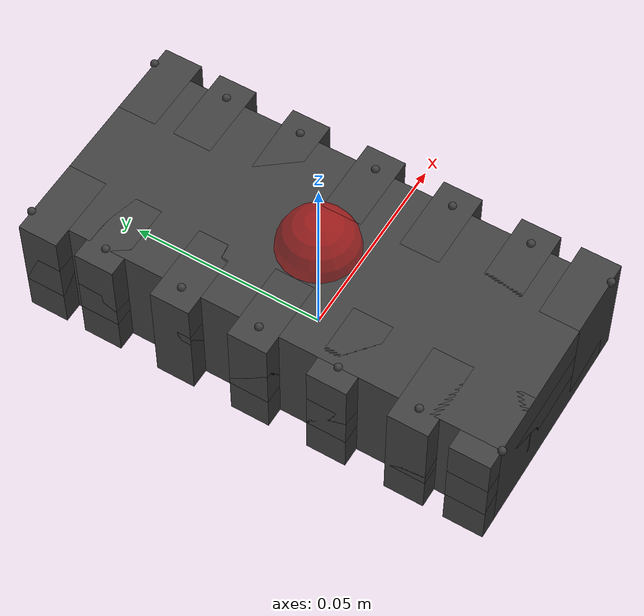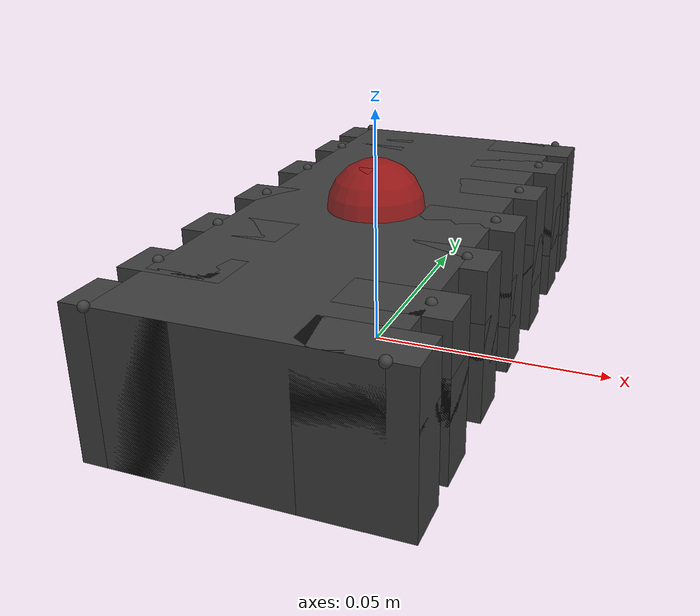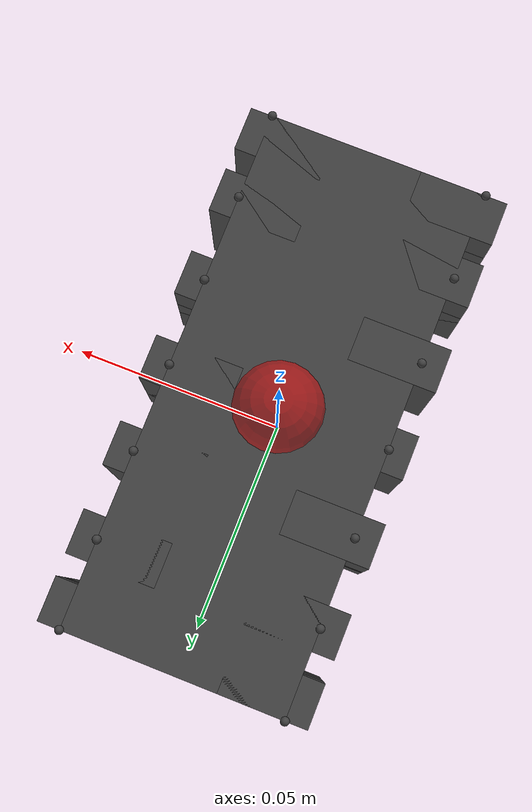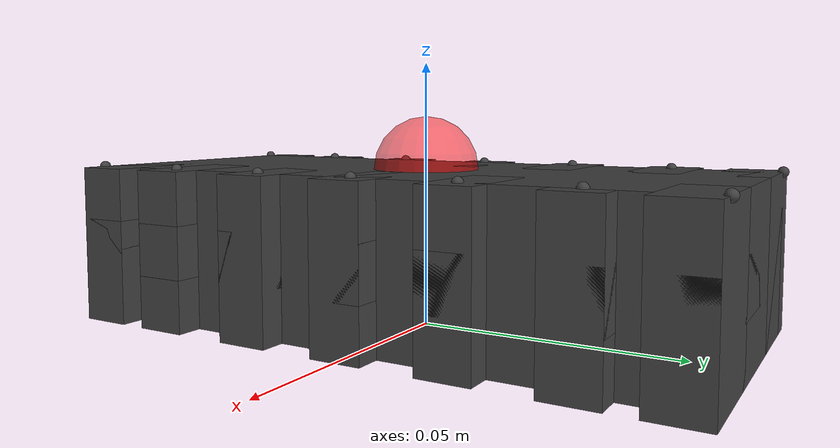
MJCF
<mujoco model="wiping_hand">
    <worldbody>
        <body name="wiping_gripper" pos="0 0 0.015" quat="0.707107 0 0 -0.707107" >
            <site name="ft_frame" pos="0 0 0" size="0.01 0.01 0.01" rgba="1 0 0 1" type="sphere" group="1"/>
            <inertial pos="0 0 0" mass="3e-2" diaginertia="1e-2 1e-2 1e-2"/>

            <geom type="box" pos="0 0 0.0" size="0.06 0.025 0.015" name="wiping_surface_vis" contype="0" conaffinity="0" group="1" rgba="0.25 0.25 0.25 1" />

            <geom type="box" group="0" pos="0.055 0.02 0.0" size="0.005 0.01 0.015" name="wiping_surface1a" solimp="0.2 0.9 0.01" solmix="10000" solref="0.05 1" rgba="0.25 0.25 0.25 1" friction="0.001 0.005 0.0001"/>
            <geom type="box" group="0" pos="0.04 0.02 0.0" size="0.005 0.01 0.015" name="wiping_surface1b" solimp="0.2 0.9 0.01" solmix="10000" solref="0.05 1" rgba="0.25 0.25 0.25 1" friction="0.001 0.005 0.0001"/>
            <geom type="box" group="0" pos="0.02 0.02 0.0" size="0.005 0.01 0.015" name="wiping_surface1c" solimp="0.2 0.9 0.01" solmix="10000" solref="0.05 1" rgba="0.25 0.25 0.25 1" friction="0.001 0.005 0.0001"/>
            <geom type="box" group="0" pos="0.0 0.02 0.0" size="0.005 0.01 0.015" name="wiping_surface1d" solimp="0.2 0.9 0.01" solmix="10000" solref="0.05 1" rgba="0.25 0.25 0.25 1" friction="0.001 0.005 0.0001"/>
            <geom type="box" group="0" pos="-0.02 0.02 0.0" size="0.005 0.01 0.015" name="wiping_surface1e" solimp="0.2 0.9 0.01" solmix="10000" solref="0.05 1" rgba="0.25 0.25 0.25 1" friction="0.001 0.005 0.0001"/>
            <geom type="box" group="0" pos="-0.04 0.02 0.0" size="0.005 0.01 0.015" name="wiping_surface1f" solimp="0.2 0.9 0.01" solmix="10000" solref="0.05 1" rgba="0.25 0.25 0.25 1" friction="0.001 0.005 0.0001"/>
            <geom type="box" group="0" pos="-0.055 0.02 0.0" size="0.005 0.01 0.015" name="wiping_surface1g" solimp="0.2 0.9 0.01" solmix="10000" solref="0.05 1" rgba="0.25 0.25 0.25 1" friction="0.001 0.005 0.0001"/>

            <geom type="sphere" group="0" pos="0.06 0.025 0.015" size="0.001" name="wiping_corner1" solimp="0.0 0.1 0.01" solmix="10000" solref="1 2" rgba="0.25 0.25 0.25 1" friction="0.001 0.005 0.0001"/>

            <site type="sphere" pos="0.06 0.025 0.015" size="0.001" name="wiping_corner1_site"/>
            <geom type="sphere" group="0" pos="0.04 0.025 0.015" size="0.001" name="wiping_surface1br" solimp="0.0 0.1 0.01" solmix="10000" solref="1 2" rgba="0.25 0.25 0.25 1" friction="0.001 0.005 0.0001"/>
            <geom type="sphere" group="0" pos="0.02 0.025 0.015" size="0.001" name="wiping_surface1cr" solimp="0.0 0.1 0.01" solmix="10000" solref="1 2" rgba="0.25 0.25 0.25 1" friction="0.001 0.005 0.0001"/>
            <geom type="sphere" group="0" pos="0.0 0.025 0.015" size="0.001" name="wiping_surface1dr" solimp="0.0 0.1 0.01" solmix="10000" solref="1 2" rgba="0.25 0.25 0.25 1" friction="0.001 0.005 0.0001"/>
            <geom type="sphere" group="0" pos="-0.02 0.025 0.015" size="0.001" name="wiping_surface1er" solimp="0.0 0.1 0.01" solmix="10000" solref="1 2" rgba="0.25 0.25 0.25 1" friction="0.001 0.005 0.0001"/>
            <geom type="sphere" group="0" pos="-0.04 0.025 0.015" size="0.001" name="wiping_surface1fr" solimp="0.0 0.1 0.01" solmix="10000" solref="1 2" rgba="0.25 0.25 0.25 1" friction="0.001 0.005 0.0001"/>
            <geom type="sphere" group="0" pos="-0.06 0.025 0.015" size="0.001" name="wiping_corner2" solimp="0.0 0.1 0.01" solmix="10000" solref="1 2" rgba="0.25 0.25 0.25 1" friction="0.001 0.005 0.0001"/>
            <site type="sphere" pos="-0.06 0.025 0.015" size="0.001" name="wiping_corner2_site"/>

            <geom type="box" group="0" pos="0.055 -0.02 0.0" size="0.005 0.01 0.015" name="wiping_surface2a" solimp="0.2 0.9 0.01" solmix="10000" solref="0.05 1" rgba="0.25 0.25 0.25 1" friction="0.001 0.005 0.0001"/>
            <geom type="box" group="0" pos="0.04 -0.02 0.0" size="0.005 0.01 0.015" name="wiping_surface2b" solimp="0.2 0.9 0.01" solmix="10000" solref="0.05 1" rgba="0.25 0.25 0.25 1" friction="0.001 0.005 0.0001"/>
            <geom type="box" group="0" pos="0.02 -0.02 0.0" size="0.005 0.01 0.015" name="wiping_surface2c" solimp="0.2 0.9 0.01" solmix="10000" solref="0.05 1" rgba="0.25 0.25 0.25 1" friction="0.001 0.005 0.0001"/>
            <geom type="box" group="0" pos="0.0 -0.02 0.0" size="0.005 0.01 0.015" name="wiping_surface2d" solimp="0.2 0.9 0.01" solmix="10000" solref="0.05 1" rgba="0.25 0.25 0.25 1" friction="0.001 0.005 0.0001"/>
            <geom type="box" group="0" pos="-0.02 -0.02 0.0" size="0.005 0.01 0.015" name="wiping_surface2e" solimp="0.2 0.9 0.01" solmix="10000" solref="0.05 1" rgba="0.25 0.25 0.25 1" friction="0.001 0.005 0.0001"/>
            <geom type="box" group="0" pos="-0.04 -0.02 0.0" size="0.005 0.01 0.015" name="wiping_surface2f" solimp="0.2 0.9 0.01" solmix="10000" solref="0.05 1" rgba="0.25 0.25 0.25 1" friction="0.001 0.005 0.0001"/>
            <geom type="box" group="0" pos="-0.055 -0.02 0.0" size="0.005 0.01 0.015" name="wiping_surface2g" solimp="0.2 0.9 0.01" solmix="10000" solref="0.05 1" rgba="0.25 0.25 0.25 1" friction="0.001 0.005 0.0001"/>

            <geom type="sphere" group="0" pos="0.06 -0.025 0.015" size="0.001" name="wiping_corner3" solimp="0.0 0.1 0.01" solmix="10000" solref="1 2" rgba="0.25 0.25 0.25 1" friction="0.001 0.005 0.0001"/>
            <site type="sphere" pos="0.06 -0.025 0.015" size="0.001" name="wiping_corner3_site"/>
            <geom type="sphere" group="0" pos="0.04 -0.025 0.015" size="0.001" name="wiping_surface2br" solimp="0.0 0.1 0.01" solmix="10000" solref="1 2" rgba="0.25 0.25 0.25 1" friction="0.001 0.005 0.0001"/>
            <geom type="sphere" group="0" pos="0.02 -0.025 0.015" size="0.001" name="wiping_surface2cr" solimp="0.0 0.1 0.01" solmix="10000" solref="1 2" rgba="0.25 0.25 0.25 1" friction="0.001 0.005 0.0001"/>
            <geom type="sphere" group="0" pos="0.0 -0.025 0.015" size="0.001" name="wiping_surface2dr" solimp="0.0 0.1 0.01" solmix="10000" solref="1 2" rgba="0.25 0.25 0.25 1" friction="0.001 0.005 0.0001"/>
            <geom type="sphere" group="0" pos="-0.02 -0.025 0.015" size="0.001" name="wiping_surface2er" solimp="0.0 0.1 0.01" solmix="10000" solref="1 2" rgba="0.25 0.25 0.25 1" friction="0.001 0.005 0.0001"/>
            <geom type="sphere" group="0" pos="-0.04 -0.025 0.015" size="0.001" name="wiping_surface2fr" solimp="0.0 0.1 0.01" solmix="10000" solref="1 2" rgba="0.25 0.25 0.25 1" friction="0.001 0.005 0.0001"/>
            <geom type="sphere" group="0" pos="-0.06 -0.025 0.015" size="0.001" name="wiping_corner4" solimp="0.0 0.1 0.01" solmix="10000" solref="1 2" rgba="0.25 0.25 0.25 1" friction="0.001 0.005 0.0001"/>
            <site type="sphere" pos="-0.06 -0.025 0.015" size="0.001" name="wiping_corner4_site"/>

            <geom type="box" group="0" pos="0.055 0.0 0.0" size="0.005 0.03 0.005" name="wiping_surface1ax" solimp="0.001 0.3 0.01" solmix="10000" solref="0.05 1" rgba="0.25 0.25 0.25 1" friction="0.001 0.005 0.0001"/>
            <geom type="box" group="0" pos="0.04 0.0 0.0" size="0.005 0.03 0.005" name="wiping_surface1bx" solimp="0.001 0.3 0.01" solmix="10000" solref="0.05 1" rgba="0.25 0.25 0.25 1" friction="0.001 0.005 0.0001"/>
            <geom type="box" group="0" pos="0.02 0.0 0.0" size="0.005 0.03 0.005" name="wiping_surface1cx" solimp="0.001 0.3 0.01" solmix="10000" solref="0.05 1" rgba="0.25 0.25 0.25 1" friction="0.001 0.005 0.0001"/>
            <geom type="box" group="0" pos="0.0 0.0 0.0" size="0.005 0.03 0.005" name="wiping_surface1dx" solimp="0.001 0.3 0.01" solmix="10000" solref="0.05 1" rgba="0.25 0.25 0.25 1" friction="0.001 0.005 0.0001"/>
            <geom type="box" group="0" pos="-0.02 0.0 0.0" size="0.005 0.03 0.005" name="wiping_surface1ex" solimp="0.001 0.3 0.01" solmix="10000" solref="0.05 1" rgba="0.25 0.25 0.25 1" friction="0.001 0.005 0.0001"/>
            <geom type="box" group="0" pos="-0.04 0.0 0.0" size="0.005 0.03 0.005" name="wiping_surface1fx" solimp="0.001 0.3 0.01" solmix="10000" solref="0.05 1" rgba="0.25 0.25 0.25 1" friction="0.001 0.005 0.0001"/>
            <geom type="box" group="0" pos="-0.055 0.0 0.0" size="0.005 0.03 0.005" name="wiping_surface1gx" solimp="0.001 0.3 0.01" solmix="10000" solref="0.05 1" rgba="0.25 0.25 0.25 1" friction="0.001 0.005 0.0001"/>

            <!-- This site was added for visualization. -->
            <body name="eef" pos="0 0 0.015" quat="1 0 0 0">
                <site name="grip_site" pos="0 0 0" size="0.01 0.01 0.01" rgba="1 0 0 0.5" type="sphere" group="1"/>
                <site name="ee_x" pos="0.1 0 0" size="0.005 .1"  quat="0.707105  0 0.707108 0 " rgba="1 0 0 0" type="cylinder" group="1"/>
                <site name="ee_y" pos="0 0.1 0" size="0.005 .1" quat="0.707105 0.707108 0 0" rgba="0 1 0 0" type="cylinder" group="1"/>
                <site name="ee_z" pos="0 0 0.1" size="0.005 .1" quat="1 0 0 0" rgba="0 0 1 0" type="cylinder" group="1"/>
                <!-- This site was added for visualization. -->
                <site name="grip_site_cylinder" pos="0 0 0" size="0.005 10" rgba="0 1 0 0.0" type="cylinder" group="1"/>
            </body>
        </body>
    </worldbody>
    <sensor>
        <force name="force_ee" site="ft_frame"/>
        <torque name="torque_ee" site="ft_frame"/>
        <touch name="touch1" site="wiping_corner1_site"/>
        <touch name="touch2" site="wiping_corner2_site"/>
        <touch name="touch3" site="wiping_corner3_site"/>
        <touch name="touch4" site="wiping_corner4_site"/>
    </sensor>
</mujoco>
